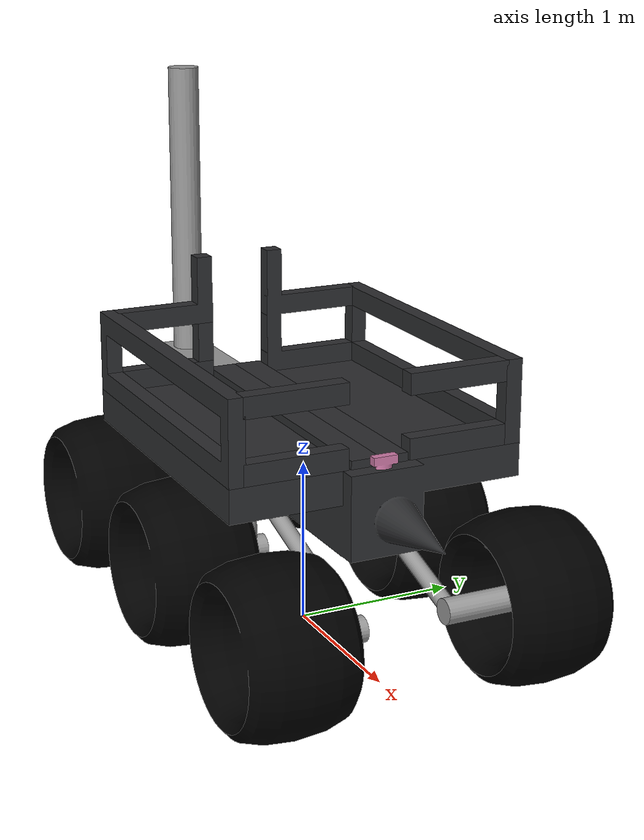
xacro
<?xml version="1.0"?>
<!-- created with Phobos 1.0.1 "Capricious Choutengan" -->
<robot name="danieljr_armed" xmlns:xacro="http://www.ros.org/wiki/xacro">

    <xacro:include filename="$(find danieljr_armed_description)/urdf/utils/utils.urdf.xacro"/>
    <xacro:include filename="$(find danieljr_armed_description)/urdf/base/robot_base.urdf.xacro"/>
    <xacro:include filename="$(find danieljr_armed_description)/urdf/sensors/camera.urdf.xacro"/>
    <xacro:include filename="$(find danieljr_armed_description)/urdf/sensors/imu_sensor.urdf.xacro"/>
    <xacro:include filename="$(find danieljr_armed_description)/urdf/sensors/lidar_3d_sensor.urdf.xacro"/>
    <xacro:include filename="$(find danieljr_armed_description)/urdf/wheels/rover_wheel.urdf.xacro"/>
    <xacro:include filename="$(find danieljr_armed_description)/urdf/arm/scara.urdf.xacro"/>
    <xacro:include filename="$(find danieljr_armed_description)/urdf/arm/gripper.urdf.xacro"/>

    <xacro:arg name="prefix" default=""/>

    <xacro:utils/>
    <xacro:chasis_structure prefix="$(arg prefix)" max_s="0.06500" max_e="1.23000" close_g="0.18000"/>
    <xacro:imu_sensor_structure prefix="$(arg prefix)" conex_link="chasis_link"/>
    <xacro:lidar_3d_structure prefix="$(arg prefix)" conex_link="chasis_link"/>
    <xacro:rover_wheel_structure prefix="$(arg prefix)" conex1_link="arm_wheel_left_link" conex2_link="arm_wheel_right_link"/>
    <xacro:scara_structure prefix="$(arg prefix)" conex_link="aa_elevator_link" lp="-0.20000" up="1.80000"/>
    <xacro:gripper_structure prefix="$(arg prefix)" arm_link="arm_2_tcp_link" mc="0.06000" lr="-3.14160" ur="3.14000"/>
    <xacro:camera_structure prefix="$(arg prefix)" conex1_link="chasis_link" conex2_link="arm_2_tcp_link" h_fov="1.047" v_width="1920" v_height="1080"/>

    <!-- GAZEBO ROS -->
    <xacro:include filename="$(find danieljr_armed_description)/urdf/ros2_control.urdf.xacro"/>
    <xacro:arg name="config_controllers" default="$(find danieljr_armed_description)/config/danieljr_armed_controllers.yaml"/>
    <xacro:arg name="update_rate" default="20"/>
    <xacro:ros2_control prefix="$(arg prefix)"/>
</robot>

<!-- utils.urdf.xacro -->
<robot name="danieljr_armed" xmlns:xacro="http://www.ros.org/wiki/xacro">
<xacro:macro name="utils" params="">
  <material name="Material">
    <color rgba="0.00000 0.00000 0.00000 1.00000"/>
  </material>
  <material name="Material.001">
    <color rgba="0.00000 0.00000 0.00000 1.00000"/>
  </material>
  <material name="Material.002">
    <color rgba="0.00000 0.00000 0.00000 1.00000"/>
  </material>
  <material name="Material.003">
    <color rgba="0.00000 0.00000 0.00000 1.00000"/>
  </material>
  <material name="Material.004">
    <color rgba="0.00000 0.00000 0.00000 1.00000"/>
  </material>
  <material name="Material.005">
    <color rgba="0.00000 0.00000 0.00000 1.00000"/>
  </material>
  <material name="Material.006">
    <color rgba="0.60000 0.60000 0.60000 1.00000"/>
  </material>
  <material name="Material.007">
    <color rgba="0.60000 0.60000 0.60000 1.00000"/>
  </material>
  <material name="Material.008">
    <color rgba="0.60000 0.60000 0.60000 1.00000"/>
  </material>
  <material name="Material.009">
    <color rgba="0.60000 0.60000 0.60000 1.00000"/>
  </material>
  <material name="Material.010">
    <color rgba="0.60000 0.60000 0.60000 1.00000"/>
  </material>
  <material name="Material.011">
    <color rgba="0.60000 0.60000 0.60000 1.00000"/>
  </material>
  <material name="Material.012">
    <color rgba="0.60000 0.60000 0.60000 1.00000"/>
  </material>
  <material name="Material.021">
    <color rgba="0.60000 0.60000 0.60000 1.00000"/>
  </material>
  <material name="Material.022">
    <color rgba="0.60000 0.60000 0.60000 1.00000"/>
  </material>
  <material name="Material.023">
    <color rgba="0.60000 0.60000 0.60000 1.00000"/>
  </material>
  <material name="Material.024">
    <color rgba="0.60000 0.60000 0.60000 1.00000"/>
  </material>
  <material name="arm">
    <color rgba="0.60000 0.60000 0.60000 1.00000"/>
  </material>
  <material name="arm.001">
    <color rgba="0.60000 0.60000 0.60000 1.00000"/>
  </material>
  <material name="chasis">
    <color rgba="0.17255 0.17647 0.18431 1.00000"/>
  </material>
</xacro:macro>
</robot>

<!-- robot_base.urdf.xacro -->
<robot name="danieljr_armed" xmlns:xacro="http://www.ros.org/wiki/xacro">
<xacro:macro name="chasis_structure" params="prefix max_s max_e close_g">

    <xacro:include filename="$(find danieljr_armed_description)/urdf/utils/utils.urdf.xacro"/>
    <xacro:include filename="$(find danieljr_armed_description)/urdf/arm/scara.urdf.xacro"/>

    <!-- REP -->
    <link name="${prefix}base_footprint">
    </link>
    <link name="${prefix}base_link">
    </link>

    <!-- URDF -->
    <link name="${prefix}chasis_link">
        <collision name="${prefix}chasis.fence.001_collision">
        <origin rpy="0.00000 0.00000 0.00000" xyz="0.00000 0.00000 0.00033"/>
        <geometry>
            <mesh filename="package://danieljr_armed_description/meshes/dae/Cube.135.dae" scale="1.00000 0.08750 0.02500"/>
        </geometry>
        </collision>
        <collision name="${prefix}chasis.fence.002_collision">
        <origin rpy="0.00000 0.00000 0.00000" xyz="-0.98285 -0.01123 0.31767"/>
        <geometry>
            <box size="0.10000 1.62000 0.50000"/>
        </geometry>
        </collision>
        <collision name="${prefix}chasis.fence.003_collision">
        <origin rpy="0.00000 0.00000 0.00000" xyz="0.00000 0.00000 0.00033"/>
        <geometry>
            <mesh filename="package://danieljr_armed_description/meshes/dae/Cube.137.dae" scale="1.00000 0.08750 0.02500"/>
        </geometry>
        </collision>
        <collision name="${prefix}chasis.fence.004_collision">
        <origin rpy="0.00000 0.00000 0.00000" xyz="0.00000 0.00000 0.00033"/>
        <geometry>
            <mesh filename="package://danieljr_armed_description/meshes/dae/Cube.138.dae" scale="1.00000 0.08750 0.02500"/>
        </geometry>
        </collision>
        <collision name="${prefix}chasis_collision">
        <origin rpy="0.00000 0.00000 0.00000" xyz="0.26715 -0.00000 0.00076"/>
        <geometry>
            <box size="2.80000 1.80000 0.17555"/>
        </geometry>
        </collision>
        <inertial>
        <inertia ixx="148.76589" ixy="-0.68567" ixz="103.55062" iyy="704.36524" iyz="0.13769" izz="772.33136"/>
        <origin rpy="0.00000 0.00000 0.00000" xyz="0.09918 -0.00001 0.08906"/>
        <mass value="400.00000"/>
        </inertial>
        <visual name="${prefix}chasis">
        <origin rpy="0.00000 0.00000 0.00000" xyz="0.00000 0.00000 0.00033"/>
        <material name="chasis"/>
        <geometry>
            <mesh filename="package://danieljr_armed_description/meshes/dae/Cube.001.dae" scale="1.00000 0.08750 0.02500"/>
        </geometry>
        </visual>
        <visual name="${prefix}chasis.fence.001">
        <origin rpy="0.00000 0.00000 0.00000" xyz="0.00000 0.00000 0.00033"/>
        <material name="chasis"/>
        <geometry>
            <mesh filename="package://danieljr_armed_description/meshes/dae/Cube.135.dae" scale="1.00000 0.08750 0.02500"/>
        </geometry>
        </visual>
        <visual name="${prefix}chasis.fence.002">
        <origin rpy="0.00000 0.00000 0.00000" xyz="-0.98285 -0.01123 0.37805"/>
        <material name="chasis"/>
        <geometry>
            <mesh filename="package://danieljr_armed_description/meshes/dae/Cube.012.dae" scale="0.05000 0.05000 0.15000"/>
        </geometry>
        </visual>
        <visual name="${prefix}chasis.fence.003">
        <origin rpy="0.00000 0.00000 0.00000" xyz="0.00000 0.00000 0.00033"/>
        <material name="chasis"/>
        <geometry>
            <mesh filename="package://danieljr_armed_description/meshes/dae/Cube.137.dae" scale="1.00000 0.08750 0.02500"/>
        </geometry>
        </visual>
        <visual name="${prefix}chasis.fence.004">
        <origin rpy="0.00000 0.00000 0.00000" xyz="0.00000 0.00000 0.00033"/>
        <material name="chasis"/>
        <geometry>
            <mesh filename="package://danieljr_armed_description/meshes/dae/Cube.138.dae" scale="1.00000 0.08750 0.02500"/>
        </geometry>
        </visual>
    </link>

    <link name="${prefix}aa_elevator_link">
        <collision name="${prefix}aa_elevator_collision">
        <origin rpy="0.00000 0.00000 0.00000" xyz="-0.00000 0.00000 0.00000"/>
        <geometry>
            <mesh filename="package://danieljr_armed_description/meshes/dae/Cube.002.dae" scale="1.00000 0.08750 0.02500"/>
        </geometry>
        </collision>
        <inertial>
        <inertia ixx="0.02048" ixy="0.00000" ixz="0.00000" iyy="0.00173" iyz="0.00000" izz="0.02208"/>
        <origin rpy="0.00000 0.00000 0.00000" xyz="-0.00000 0.00000 -0.00000"/>
        <mass value="2.00000"/>
        </inertial>
        <visual name="${prefix}aa_elevator">
        <origin rpy="0.00000 0.00000 0.00000" xyz="0.00000 0.00000 -0.00000"/>
        <material name="chasis"/>
        <geometry>
            <mesh filename="package://danieljr_armed_description/meshes/dae/Cube.258.dae" scale="1.00000 0.10000 0.02500"/>
        </geometry>
        </visual>
    </link>

    <link name="${prefix}arm_wheel_left_link">
        <collision name="${prefix}arm_wheel_left_collision">
        <origin rpy="0.00000 1.26246 0.00000" xyz="0.00000 0.00000 -0.00000"/>
        <geometry>
            <mesh filename="package://danieljr_armed_description/meshes/dae/Cylinder.011.dae" scale="0.05000 0.05000 0.65000"/>
        </geometry>
        </collision>
        <inertial>
        <inertia ixx="0.08742" ixy="-0.00153" ixz="-0.00562" iyy="2.09869" iyz="-0.00217" izz="2.01952"/>
        <origin rpy="0.00000 0.00000 0.00000" xyz="-0.00000 0.00000 0.00000"/>
        <mass value="5.00000"/>
        </inertial>
        <visual name="${prefix}arm_wheel_left">
        <origin rpy="0.00000 1.26246 0.00000" xyz="0.00000 0.00000 0.00000"/>
        <material name="Material.006"/>
        <geometry>
            <mesh filename="package://danieljr_armed_description/meshes/dae/Cylinder.011.dae" scale="0.05000 0.05000 0.65000"/>
        </geometry>
        </visual>
    </link>

    <link name="${prefix}arm_wheel_right_link">
        <collision name="${prefix}arm_wheel_right_collision">
        <origin rpy="0.00000 1.26246 0.00000" xyz="0.00000 0.00000 -0.00000"/>
        <geometry>
            <mesh filename="package://danieljr_armed_description/meshes/dae/Cylinder.014.dae" scale="0.05000 0.05000 0.65000"/>
        </geometry>
        </collision>
        <inertial>
        <inertia ixx="0.08739" ixy="0.00153" ixz="-0.00562" iyy="2.09769" iyz="0.00217" izz="2.01855"/>
        <origin rpy="0.00000 0.00000 0.00000" xyz="0.00000 0.00000 -0.00000"/>
        <mass value="5.00000"/>
        </inertial>
        <visual name="${prefix}arm_wheel_right">
        <origin rpy="0.00000 1.26246 0.00000" xyz="-0.00000 0.00000 -0.00000"/>
        <material name="Material.006"/>
        <geometry>
            <mesh filename="package://danieljr_armed_description/meshes/dae/Cylinder.014.dae" scale="0.05000 0.05000 0.65000"/>
        </geometry>
        </visual>
    </link>

    <link name="${prefix}gate_1_link">
        <inertial>
        <inertia ixx="0.00552" ixy="0.00000" ixz="0.00000" iyy="0.66708" iyz="0.00000" izz="0.67177"/>
        <origin rpy="0.00000 0.00000 0.00000" xyz="0.00000 -0.00000 0.00000"/>
        <mass value="2.00000"/>
        </inertial>
        <visual name="${prefix}gate_1">
        <origin rpy="0.00000 0.00000 0.00000" xyz="0.00000 0.00000 0.00000"/>
        <material name="chasis"/>
        <geometry>
            <box size="2.00000 0.17500 0.05000"/>
        </geometry>
        </visual>
        <collision name="${prefix}gate_1_collision">
            <origin rpy="0.00000 0.00000 0.00000" xyz="0.00000 0.00000 0.00000"/>
            <geometry>
                <box size="0.001 0.001 0.001"/>
            </geometry>
        </collision>
    </link>

    <link name="${prefix}gate_2_link">
        <inertial>
        <inertia ixx="0.00552" ixy="0.00000" ixz="0.00000" iyy="0.66708" iyz="0.00000" izz="0.67177"/>
        <origin rpy="0.00000 0.00000 0.00000" xyz="0.00000 0.00000 0.00000"/>
        <mass value="2.00000"/>
        </inertial>
        <visual name="${prefix}gate_2">
        <origin rpy="0.00000 0.00000 0.00000" xyz="0.00000 0.00000 0.00000"/>
        <material name="chasis"/>
        <geometry>
            <box size="2.00000 0.17500 0.05000"/>
        </geometry>
        </visual>
        <collision name="${prefix}gate_2_collision">
            <origin rpy="0.00000 0.00000 0.00000" xyz="0.00000 0.00000 0.00000"/>
            <geometry>
                <box size="0.001 0.001 0.001"/>
            </geometry>
        </collision>
    </link>

    <joint name="${prefix}aa_elevator_link_joint" type="prismatic">
        <limit lower="0.00000" upper="${max_e}" effort="1000.00000" velocity="1.50000"/>
        <origin rpy="0.00000 0.00000 0.00000" xyz="-1.08285 0.00000 -0.37467"/>
        <parent link="${prefix}chasis_link"/>
        <child link="${prefix}aa_elevator_link"/>
        <axis xyz="0.00000 0.00000 1.00000"/>
    </joint>

    <joint name="${prefix}arm_wheel_left_link_joint" type="prismatic">
        <limit lower="-0.10000" upper="${max_s}" effort="4000.00000" velocity="1.00000"/>
        <origin rpy="0.00000 0.00000 0.00000" xyz="-0.03285 0.30599 -0.51054"/>
        <parent link="${prefix}chasis_link"/>
        <child link="${prefix}arm_wheel_left_link"/>
        <axis xyz="0.00000 0.00000 -1.00000"/>
    </joint>

    <joint name="${prefix}arm_wheel_right_link_joint" type="prismatic">
        <limit lower="-0.10000" upper="${max_s}" effort="4000.00000" velocity="1.00000"/>
        <origin rpy="0.00000 0.00000 0.00000" xyz="-0.03286 -0.30599 -0.51054"/>
        <parent link="${prefix}chasis_link"/>
        <child link="${prefix}arm_wheel_right_link"/>
        <axis xyz="0.00000 0.00000 -1.00000"/>
    </joint>

    <joint name="${prefix}gate_1_link_joint" type="prismatic">
        <limit lower="0.00000" upper="${close_g}" effort="500.00000" velocity="0.50000"/>
        <origin rpy="0.00000 0.00000 0.00000" xyz="-0.03285 -0.08750 0.09267"/>
        <parent link="${prefix}chasis_link"/>
        <child link="${prefix}gate_1_link"/>
        <axis xyz="0.00000 -1.00000 0.00000"/>
    </joint>

    <joint name="${prefix}gate_2_link_joint" type="prismatic">
        <limit lower="0.00000" upper="${close_g}" effort="500.00000" velocity="0.50000"/>
        <origin rpy="0.00000 0.00000 0.00000" xyz="-0.03285 0.08750 0.09267"/>
        <parent link="${prefix}chasis_link"/>
        <child link="${prefix}gate_2_link"/>
        <axis xyz="0.00000 1.00000 0.00000"/>
    </joint>

    <!-- REP -->

    <joint name="${prefix}base_to_footprint" type="fixed">
        <parent link="${prefix}base_footprint"/>
        <child link="${prefix}base_link"/>

        <origin xyz="0 0 1.229351" rpy="0 0 0"/>
    </joint>

    <joint name="${prefix}base_to_link" type="fixed">
        <parent link="${prefix}base_link"/>
        <child link="${prefix}chasis_link"/>

        <origin xyz="0 0 0" rpy="0 0 0"/>
    </joint>

</xacro:macro>
</robot>

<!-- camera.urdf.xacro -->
<robot name="danieljr_armed" xmlns:xacro="http://www.ros.org/wiki/xacro">
<xacro:macro name="camera_structure" params="prefix conex1_link conex2_link h_fov v_width v_height">
    <link name="${prefix}base_camera_front_link">
        <visual name="${prefix}camera">
        <origin rpy="0.00000 0.00000 0.00000" xyz="-0.00000 0.00000 -0.00000"/>
        <geometry>
            <mesh filename="package://danieljr_armed_description/meshes/dae/Cylinder.010.dae" scale="0.50000 1.00000 1.00000"/>
        </geometry>
        </visual>
        <collision name="${prefix}camera_collision">
            <origin rpy="0.000000 0.00000 0.00000" xyz="-0.00000 0.00000 -0.00000"/>
            <geometry>
                <mesh filename="package://danieljr_armed_description/meshes/dae/Cylinder.010.dae" scale="0.50000 1.00000 1.00000"/>
            </geometry>
        </collision>
    </link>

    <joint name="${prefix}base_camera_front_joint" type="fixed">
        <origin rpy="0.00000 0.00000 0.00000" xyz="1.01714 0.00000 0.09267"/>
        <parent link="${prefix}${conex1_link}"/>
        <child link="${prefix}base_camera_front_link"/>
    </joint>

    <link name="${prefix}camera_front_frame">
    </link>

    <joint name="${prefix}camera_front_frame_joint" type="fixed">
        <origin rpy="0.00000 0.00000 0.00000" xyz="0.00000 0.00000 0.00000"/>
        <parent link="${prefix}base_camera_front_link"/>
        <child link="${prefix}camera_front_frame"/>
    </joint>

    <link name="${prefix}camera_optical_front">
    </link>
    <joint name="${prefix}camera_front_link_joint" type="fixed">
        <origin rpy="-1.57000 0.00000 -1.57000" xyz="0.00000 0.00000 0.00000"/>
        <parent link="${prefix}camera_front_frame"/>
        <child link="${prefix}camera_optical_front"/>
    </joint>

    <gazebo reference="${prefix}camera_front_frame">
        <sensor name="${prefix}camera_front_sensor" type="camera">
        <visualize>true</visualize>
        <update_rate>30</update_rate>
        <topic>/${prefix}/camera_front/image</topic>
        <camera>
            <horizontal_fov>${h_fov}</horizontal_fov>
            <image>
            <width>${v_width}</width>
            <height>${v_height}</height>
            <format>R8G8B8</format>
            </image>
            <clip>
            <near>0.10</near>
            <far>15.0</far>
            </clip>
            <noise>
            <type>gaussian</type>
            <mean>0.0</mean>
            <stddev>0.007</stddev>
            </noise>
            <optical_frame_id>${prefix}camera_front_frame</optical_frame_id>
        </camera>
        </sensor>
    </gazebo>

    <link name="${prefix}base_camera_scara">
        <visual>
        <origin xyz="0 0 0.005" rpy="0 0 1.57"/>
        <geometry>
            <box size="0.1 0.05 0.05"/>
        </geometry>
        <material name="chasis"/>
        </visual>
        <collision name="${prefix}camera_scara_collision">
            <origin xyz="0 0 0.005" rpy="0 0 0"/>
            <geometry>
                <box size="0.1 0.05 0.05"/>
            </geometry>
        </collision>
    </link>

    <joint name="${prefix}base_camera_scara_joint" type="fixed">
        <origin rpy="0.00000 1.57000 0.00000" xyz="0.00000 0.00000 -0.26000"/>
        <parent link="${prefix}${conex2_link}"/>
        <child link="${prefix}base_camera_scara"/>
    </joint>

    <link name="${prefix}camera_optical_scara">
    </link>

    <joint name="${prefix}camera_scara_link_joint" type="fixed">
        <origin rpy="-1.57000 0.00000 -1.57000" xyz="0.00000 0.00000 0.00000"/>
        <parent link="${prefix}base_camera_scara"/>
        <child link="${prefix}camera_optical_scara"/>
    </joint>

    <gazebo reference="${prefix}base_camera_scara">
        <sensor name="${prefix}camera_scara_sensor" type="camera">
        <visualize>true</visualize>
        <update_rate>30</update_rate>
        <topic>/${prefix}/camera_scara/image</topic>
        <camera>
            <horizontal_fov>${h_fov}</horizontal_fov>
            <image>
            <width>${v_width}</width>
            <height>${v_height}</height>
            <format>R8G8B8</format>
            </image>
            <clip>
            <near>0.10</near>
            <far>15.0</far>
            </clip>
            <noise>
            <type>gaussian</type>
            <mean>0.0</mean>
            <stddev>0.007</stddev>
            </noise>
            <optical_frame_id>${prefix}base_camera_scara</optical_frame_id>
        </camera>
        </sensor>
    </gazebo>

</xacro:macro>
</robot>

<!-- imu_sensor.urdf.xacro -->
<robot name="danieljr_armed" xmlns:xacro="http://www.ros.org/wiki/xacro">
<xacro:macro name="imu_sensor_structure" params="prefix conex_link">
    <link name="${prefix}imu_link">
    </link>

    <joint name="${prefix}imu_link_joint" type="fixed">
        <parent link="${prefix}${conex_link}"/>
        <child link="${prefix}imu_link"/>

        <origin xyz="0 0 0" rpy="0 0 0"/>
    </joint>

  <gazebo reference="${prefix}imu_link">
    <sensor name="${prefix}imu_sensor" type="imu">
      <always_on>1</always_on>
      <update_rate>30</update_rate>
      <topic>${prefix}imu_sensor/data</topic>
    </sensor>
  </gazebo>
</xacro:macro>
</robot>

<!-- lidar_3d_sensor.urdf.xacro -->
<robot name="danieljr_armed" xmlns:xacro="http://www.ros.org/wiki/xacro">
<xacro:macro name="lidar_3d_structure" params="prefix conex_link">
    <link name="${prefix}lidar_link">
    </link>

    <joint name="${prefix}lidar_link_joint" type="fixed">
        <parent link="${prefix}${conex_link}"/>
        <child link="${prefix}lidar_link"/>

        <origin xyz="0 0 1" rpy="0 0 0"/>
    </joint>

  <gazebo reference="${prefix}lidar_link">
    <sensor name='gpu_lidar' type='gpu_lidar'>
      <pose relative_to='${prefix}lidar_link'>0 0 0 0 0 0</pose>
      <topic>/${prefix}/lidar_sensor</topic>
      <update_rate>20</update_rate>
      <gz_frame_id>${prefix}lidar_link</gz_frame_id>
      <lidar>
        <scan>
          <horizontal>
            <samples>450</samples>
            <resolution>1</resolution>
            <min_angle>-3.141592</min_angle>
            <max_angle>3.141592</max_angle>
          </horizontal>
          <vertical>
            <samples>32</samples>
            <resolution>1</resolution>
            <min_angle>-0.436332</min_angle>
            <max_angle>0.08726</max_angle>
          </vertical>
        </scan>
          <range>
          <min>0.2</min>
          <max>90.0</max>
          <resolution>0.02</resolution>
        </range>
      </lidar>
      <visualize>true</visualize>
    </sensor>
  </gazebo>
</xacro:macro>
</robot>

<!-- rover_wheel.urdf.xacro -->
<robot name="danieljr_armed" xmlns:xacro="http://www.ros.org/wiki/xacro">
<xacro:macro name="rover_wheel_structure" params="prefix conex1_link conex2_link">

    <xacro:include filename="$(find danieljr_armed_description)/urdf/utils/utils.urdf.xacro"/>

<!-- LEFT WHEELS -->
    <link name="${prefix}grap_1_link">
        <collision name="${prefix}grap_1_collision">
        <origin rpy="0.00000 0.00000 0.00000" xyz="-0.00000 0.00000 -0.00000"/>
        <geometry>
            <mesh filename="package://danieljr_armed_description/meshes/dae/Cylinder.005.dae" scale="0.07500 0.07500 0.25000"/>
        </geometry>
        </collision>
        <inertial>
        <inertia ixx="0.01112" ixy="0.00000" ixz="0.00000" iyy="0.00141" iyz="-0.00000" izz="0.01112"/>
        <origin rpy="0.00000 0.00000 0.00000" xyz="0.00000 -0.00000 0.00000"/>
        <mass value="0.50000"/>
        </inertial>
        <visual name="${prefix}grap_1">
        <origin rpy="0.00000 0.00000 0.00000" xyz="0.00000 0.00000 0.00000"/>
        <material name="Material.007"/>
        <geometry>
            <cylinder radius="0.07500" length="0.50000"/>
        </geometry>
        </visual>
    </link>

    <link name="${prefix}grap_3_link">
        <collision name="${prefix}grap_3_collision">
        <origin rpy="0.00000 0.00000 0.00000" xyz="-0.00000 0.00000 -0.00000"/>
        <geometry>
            <mesh filename="package://danieljr_armed_description/meshes/dae/Cylinder.002.dae" scale="0.07500 0.07500 0.25000"/>
        </geometry>
        </collision>
        <inertial>
        <inertia ixx="0.01112" ixy="0.00000" ixz="0.00000" iyy="0.00141" iyz="-0.00000" izz="0.01112"/>
        <origin rpy="0.00000 0.00000 0.00000" xyz="0.00000 -0.00000 0.00000"/>
        <mass value="0.50000"/>
        </inertial>
        <visual name="${prefix}grap_3">
        <origin rpy="0.00000 0.00000 0.00000" xyz="0.00000 0.00000 0.00000"/>
        <material name="Material.009"/>
        <geometry>
            <cylinder radius="0.07500" length="0.50000"/>
        </geometry>
        </visual>
    </link>

    <link name="${prefix}grap_5_link">
        <collision name="${prefix}grap_5_collision">
        <origin rpy="0.00000 0.00000 0.00000" xyz="-0.00000 0.00000 -0.00000"/>
        <geometry>
            <mesh filename="package://danieljr_armed_description/meshes/dae/Cylinder.001.dae" scale="0.07500 0.07500 0.25000"/>
        </geometry>
        </collision>
        <inertial>
        <inertia ixx="0.01112" ixy="0.00000" ixz="0.00000" iyy="0.00141" iyz="-0.00000" izz="0.01112"/>
        <origin rpy="0.00000 0.00000 0.00000" xyz="-0.00000 -0.00000 0.00000"/>
        <mass value="0.50000"/>
        </inertial>
        <visual name="${prefix}grap_5">
        <origin rpy="0.00000 0.00000 0.00000" xyz="-0.00000 0.00000 0.00000"/>
        <material name="Material.011"/>
        <geometry>
            <cylinder radius="0.07500" length="0.50000"/>
        </geometry>
        </visual>
    </link>

    <link name="${prefix}wheel_1_link">
        <collision name="${prefix}wheel_1_collision">
        <origin rpy="0.00000 0.00000 0.00000" xyz="0.00000 0.00000 0.00000"/>
        <geometry>
            <mesh filename="package://danieljr_armed_description/meshes/dae/Torus.dae" scale="0.40000 0.40000 1.30000"/>
        </geometry>
        </collision>
        <inertial>
        <inertia ixx="0.47666" ixy="0.00000" ixz="0.00000" iyy="0.70377" iyz="0.00000" izz="0.47666"/>
        <origin rpy="0.00000 0.00000 0.00000" xyz="0.00000 -0.00000 0.00000"/>
        <mass value="6.00000"/>
        </inertial>
        <visual name="${prefix}wheel_1">
        <origin rpy="0.00000 0.00000 0.00000" xyz="0.00000 0.00000 0.00000"/>
        <material name="Material"/>
        <geometry>
            <mesh filename="package://danieljr_armed_description/meshes/dae/Torus.dae" scale="0.40000 0.40000 1.30000"/>
        </geometry>
        </visual>
        <surface>
        <friction>
            <ode>
                <mu>10.000000</mu>
                <mu2>10.000000</mu2>
                <fdir1>0.000000 0.000000 1.000000</fdir1>
                <slip1>0.500000</slip1>
                <slip2>0.500000</slip2>
            </ode>
        </friction>
        </surface>
    </link>

    <link name="${prefix}wheel_3_link">
        <collision name="${prefix}wheel_3_collision">
        <origin rpy="0.00000 0.00000 0.00000" xyz="-0.00000 0.00000 0.00000"/>
        <geometry>
            <mesh filename="package://danieljr_armed_description/meshes/dae/Torus.001.dae" scale="0.40000 0.40000 1.30000"/>
        </geometry>
        </collision>
        <inertial>
        <inertia ixx="0.47666" ixy="0.00000" ixz="0.00000" iyy="0.70377" iyz="0.00000" izz="0.47666"/>
        <origin rpy="0.00000 0.00000 0.00000" xyz="0.00000 -0.00000 0.00000"/>
        <mass value="6.00000"/>
        </inertial>
        <visual name="${prefix}wheel_3">
        <origin rpy="0.00000 0.00000 0.00000" xyz="0.00000 0.00000 0.00000"/>
        <material name="Material.002"/>
        <geometry>
            <mesh filename="package://danieljr_armed_description/meshes/dae/Torus.001.dae" scale="0.40000 0.40000 1.30000"/>
        </geometry>
        </visual>
        <surface>
        <friction>
            <ode>
                <mu>10.000000</mu>
                <mu2>10.000000</mu2>
                <fdir1>0.000000 0.000000 1.000000</fdir1>
                <slip1>0.500000</slip1>
                <slip2>0.500000</slip2>
            </ode>
        </friction>
        </surface>
    </link>

    <link name="${prefix}wheel_5_link">
        <collision name="${prefix}wheel_5_collision">
        <origin rpy="0.00000 0.00000 0.00000" xyz="-0.00000 0.00000 0.00000"/>
        <geometry>
            <mesh filename="package://danieljr_armed_description/meshes/dae/Torus.002.dae" scale="0.40000 0.40000 1.30000"/>
        </geometry>
        </collision>
        <inertial>
        <inertia ixx="0.47666" ixy="0.00000" ixz="0.00000" iyy="0.70377" iyz="0.00000" izz="0.47666"/>
        <origin rpy="0.00000 0.00000 0.00000" xyz="-0.00000 -0.00000 0.00000"/>
        <mass value="6.00000"/>
        </inertial>
        <visual name="${prefix}wheel_5">
        <origin rpy="0.00000 0.00000 0.00000" xyz="-0.00000 0.00000 0.00000"/>
        <material name="Material.004"/>
        <geometry>
            <mesh filename="package://danieljr_armed_description/meshes/dae/Torus.002.dae" scale="0.40000 0.40000 1.30000"/>
        </geometry>
        </visual>
        <surface>
        <friction>
            <ode>
                <mu>10.000000</mu>
                <mu2>10.000000</mu2>
                <fdir1>0.000000 0.000000 1.000000</fdir1>
                <slip1>0.500000</slip1>
                <slip2>0.500000</slip2>
            </ode>
        </friction>
        </surface>
    </link>

    <joint name="${prefix}grap_1_link_joint" type="fixed">
        <origin rpy="1.57080 0.00000 0.00000" xyz="1.30000 0.19401 -0.22179"/>
        <parent link="${prefix}${conex1_link}"/>
        <child link="${prefix}grap_1_link"/>
    </joint>

    <joint name="${prefix}grap_3_link_joint" type="fixed">
        <origin rpy="1.57080 0.00000 0.00000" xyz="0.00000 0.19401 -0.22179"/>
        <parent link="${prefix}${conex1_link}"/>
        <child link="${prefix}grap_3_link"/>
    </joint>

    <joint name="${prefix}grap_5_link_joint" type="fixed">
        <origin rpy="1.57080 0.00000 0.00000" xyz="-1.30000 0.19401 -0.22179"/>
        <parent link="${prefix}${conex1_link}"/>
        <child link="${prefix}grap_5_link"/>
    </joint>

    <joint name="${prefix}wheel_1_link_joint" type="continuous">
        <limit lower="0" upper="0" effort="10000.00000" velocity="50.00000"/>
        <origin rpy="0.00000 0.00000 0.00000" xyz="-0.00000 -0.00000 -0.27500"/>
        <parent link="${prefix}grap_1_link"/>
        <child link="${prefix}wheel_1_link"/>
        <axis xyz="0.00000 0.00000 -1.00000"/>
    </joint>

    <joint name="${prefix}wheel_3_link_joint" type="continuous">
        <limit lower="0" upper="0" effort="10000.00000" velocity="50.00000"/>
        <origin rpy="0.00000 0.00000 0.00000" xyz="0.00000 -0.00000 -0.27500"/>
        <parent link="${prefix}grap_3_link"/>
        <child link="${prefix}wheel_3_link"/>
        <axis xyz="0.00000 0.00000 -1.00000"/>
    </joint>

    <joint name="${prefix}wheel_5_link_joint" type="continuous">
        <limit lower="0" upper="0" effort="10000.00000" velocity="50.00000"/>
        <origin rpy="0.00000 0.00000 0.00000" xyz="0.00000 -0.00000 -0.27500"/>
        <parent link="${prefix}grap_5_link"/>
        <child link="${prefix}wheel_5_link"/>
        <axis xyz="0.00000 0.00000 -1.00000"/>
    </joint>

<!-- RIGHT WHEELS -->

    <link name="${prefix}grap_2_link">
        <collision name="${prefix}grap_2_collision">
        <origin rpy="0.00000 0.00000 0.00000" xyz="0.00000 0.00000 -0.00000"/>
        <geometry>
            <mesh filename="package://danieljr_armed_description/meshes/dae/Cylinder.004.dae" scale="0.07500 0.07500 0.25000"/>
        </geometry>
        </collision>
        <inertial>
        <inertia ixx="0.01112" ixy="0.00000" ixz="0.00000" iyy="0.00141" iyz="-0.00000" izz="0.01112"/>
        <origin rpy="0.00000 0.00000 0.00000" xyz="0.00000 0.00000 0.00000"/>
        <mass value="0.50000"/>
        </inertial>
        <visual name="${prefix}grap_2">
        <origin rpy="0.00000 0.00000 0.00000" xyz="0.00000 0.00000 0.00000"/>
        <material name="Material.008"/>
        <geometry>
            <cylinder radius="0.07500" length="0.50000"/>
        </geometry>
        </visual>
    </link>

    <link name="${prefix}grap_4_link">
        <collision name="${prefix}grap_4_collision">
        <origin rpy="0.00000 0.00000 0.00000" xyz="-0.00000 0.00000 -0.00000"/>
        <geometry>
            <mesh filename="package://danieljr_armed_description/meshes/dae/Cylinder.003.dae" scale="0.07500 0.07500 0.25000"/>
        </geometry>
        </collision>
        <inertial>
        <inertia ixx="0.01112" ixy="0.00000" ixz="0.00000" iyy="0.00141" iyz="-0.00000" izz="0.01112"/>
        <origin rpy="0.00000 0.00000 0.00000" xyz="0.00000 0.00000 0.00000"/>
        <mass value="0.50000"/>
        </inertial>
        <visual name="${prefix}grap_4">
        <origin rpy="0.00000 0.00000 0.00000" xyz="0.00000 0.00000 0.00000"/>
        <material name="Material.010"/>
        <geometry>
            <cylinder radius="0.07500" length="0.50000"/>
        </geometry>
        </visual>
    </link>

    <link name="${prefix}grap_6_link">
        <collision name="${prefix}grap_6_collision">
        <origin rpy="0.00000 0.00000 0.00000" xyz="-0.00000 0.00000 -0.00000"/>
        <geometry>
            <mesh filename="package://danieljr_armed_description/meshes/dae/Cylinder.dae" scale="0.07500 0.07500 0.25000"/>
        </geometry>
        </collision>
        <inertial>
        <inertia ixx="0.01112" ixy="0.00000" ixz="0.00000" iyy="0.00141" iyz="-0.00000" izz="0.01112"/>
        <origin rpy="0.00000 0.00000 0.00000" xyz="-0.00000 0.00000 0.00000"/>
        <mass value="0.50000"/>
        </inertial>
        <visual name="${prefix}grap_6">
        <origin rpy="0.00000 0.00000 0.00000" xyz="-0.00000 0.00000 0.00000"/>
        <material name="Material.012"/>
        <geometry>
            <cylinder radius="0.07500" length="0.50000"/>
        </geometry>
        </visual>
    </link>

    <link name="${prefix}wheel_2_link">
        <collision name="${prefix}wheel_2_collision">
        <origin rpy="0.00000 0.00000 0.00000" xyz="0.00000 0.00000 -0.00000"/>
        <geometry>
            <mesh filename="package://danieljr_armed_description/meshes/dae/Torus.005.dae" scale="0.40000 0.40000 1.30000"/>
        </geometry>
        </collision>
        <inertial>
        <inertia ixx="0.47666" ixy="0.00000" ixz="0.00000" iyy="0.70377" iyz="0.00000" izz="0.47666"/>
        <origin rpy="0.00000 0.00000 0.00000" xyz="0.00000 -0.00000 -0.00000"/>
        <mass value="6.00000"/>
        </inertial>
        <visual name="${prefix}wheel_2">
        <origin rpy="0.00000 0.00000 0.00000" xyz="0.00000 -0.00000 -0.00000"/>
        <material name="Material.001"/>
        <geometry>
            <mesh filename="package://danieljr_armed_description/meshes/dae/Torus.005.dae" scale="0.40000 0.40000 1.30000"/>
        </geometry>
        </visual>
        <surface>
        <friction>
            <ode>
                <mu>10.000000</mu>
                <mu2>10.000000</mu2>
                <fdir1>0.000000 0.000000 1.000000</fdir1>
                <slip1>0.500000</slip1>
                <slip2>0.500000</slip2>
            </ode>
        </friction>
        </surface>
    </link>

    <link name="${prefix}wheel_4_link">
        <collision name="${prefix}wheel_4_collision">
        <origin rpy="0.00000 0.00000 0.00000" xyz="-0.00000 0.00000 -0.00000"/>
        <geometry>
            <mesh filename="package://danieljr_armed_description/meshes/dae/Torus.004.dae" scale="0.40000 0.40000 1.30000"/>
        </geometry>
        </collision>
        <inertial>
        <inertia ixx="0.47666" ixy="0.00000" ixz="0.00000" iyy="0.70377" iyz="0.00000" izz="0.47666"/>
        <origin rpy="0.00000 0.00000 0.00000" xyz="0.00000 -0.00000 -0.00000"/>
        <mass value="6.00000"/>
        </inertial>
        <visual name="${prefix}wheel_4">
        <origin rpy="0.00000 0.00000 0.00000" xyz="0.00000 -0.00000 -0.00000"/>
        <material name="Material.003"/>
        <geometry>
            <mesh filename="package://danieljr_armed_description/meshes/dae/Torus.004.dae" scale="0.40000 0.40000 1.30000"/>
        </geometry>
        </visual>
        <surface>
        <friction>
            <ode>
                <mu>10.000000</mu>
                <mu2>10.000000</mu2>
                <fdir1>0.000000 0.000000 1.000000</fdir1>
                <slip1>0.500000</slip1>
                <slip2>0.500000</slip2>
            </ode>
        </friction>
        </surface>
    </link>

    <link name="${prefix}wheel_6_link">
        <collision name="${prefix}wheel_6_collision">
        <origin rpy="0.00000 0.00000 0.00000" xyz="-0.00000 0.00000 -0.00000"/>
        <geometry>
            <mesh filename="package://danieljr_armed_description/meshes/dae/Torus.003.dae" scale="0.40000 0.40000 1.30000"/>
        </geometry>
        </collision>
        <inertial>
        <inertia ixx="0.47666" ixy="0.00000" ixz="0.00000" iyy="0.70377" iyz="0.00000" izz="0.47666"/>
        <origin rpy="0.00000 0.00000 0.00000" xyz="-0.00000 -0.00000 -0.00000"/>
        <mass value="6.00000"/>
        </inertial>
        <visual name="${prefix}wheel_6">
        <origin rpy="0.00000 0.00000 0.00000" xyz="-0.00000 -0.00000 -0.00000"/>
        <material name="Material.005"/>
        <geometry>
            <mesh filename="package://danieljr_armed_description/meshes/dae/Torus.003.dae" scale="0.40000 0.40000 1.30000"/>
        </geometry>
        </visual>
        <surface>
        <friction>
            <ode>
                <mu>10.000000</mu>
                <mu2>10.000000</mu2>
                <fdir1>0.000000 0.000000 1.000000</fdir1>
                <slip1>0.500000</slip1>
                <slip2>0.500000</slip2>
            </ode>
        </friction>
        </surface>
    </link>

    <joint name="${prefix}grap_2_link_joint" type="fixed">
        <origin rpy="1.57080 0.00000 0.00000" xyz="1.30000 -0.19401 -0.22179"/>
        <parent link="${prefix}${conex2_link}"/>
        <child link="${prefix}grap_2_link"/>
    </joint>

    <joint name="${prefix}grap_4_link_joint" type="fixed">
        <origin rpy="1.57080 0.00000 0.00000" xyz="0.00000 -0.19401 -0.22179"/>
        <parent link="${prefix}${conex2_link}"/>
        <child link="${prefix}grap_4_link"/>
    </joint>

    <joint name="${prefix}grap_6_link_joint" type="fixed">
        <origin rpy="1.57080 0.00000 0.00000" xyz="-1.30000 -0.19401 -0.22179"/>
        <parent link="${prefix}${conex2_link}"/>
        <child link="${prefix}grap_6_link"/>
    </joint>

    <joint name="${prefix}wheel_2_link_joint" type="continuous">
        <limit lower="0" upper="0" effort="10000.00000" velocity="50.00000"/>
        <origin rpy="3.14000 0.00000 0.00000" xyz="0.00000 0.00000 0.27500"/>
        <parent link="${prefix}grap_2_link"/>
        <child link="${prefix}wheel_2_link"/>
        <axis xyz="0.00000 0.00000 -1.00000"/>
    </joint>

    <joint name="${prefix}wheel_4_link_joint" type="continuous">
        <limit lower="0" upper="0" effort="10000.00000" velocity="50.00000"/>
        <origin rpy="3.14000 0.00000 0.00000" xyz="0.00000 0.00000 0.27500"/>
        <parent link="${prefix}grap_4_link"/>
        <child link="${prefix}wheel_4_link"/>
        <axis xyz="0.00000 0.00000 -1.00000"/>
    </joint>

    <joint name="${prefix}wheel_6_link_joint" type="continuous">
        <limit lower="0" upper="0" effort="10000.00000" velocity="50.00000"/>
        <origin rpy="3.14000 0.00000 0.00000" xyz="0.00000 0.00000 0.27500"/>
        <parent link="${prefix}grap_6_link"/>
        <child link="${prefix}wheel_6_link"/>
        <axis xyz="0.00000 0.00000 -1.00000"/>
    </joint>

    <transmission name="${prefix}wheel_1_link_joint_trans">
    <type>transmission_interface/SimpleTransmission</type>
    <joint name="${prefix}wheel_1_link_joint">
        <hardwareInterface>hardware_interface/VelocityJointInterface</hardwareInterface>
    </joint>
        <actuator name="${prefix}wheel_1_link_joint_motor">
            <mechanicalReduction>1</mechanicalReduction>
        </actuator>
    </transmission>

    <gazebo reference="${prefix}wheel_1_link">
        <mu1>5</mu1>
        <mu2>5</mu2>
    </gazebo>

    <transmission name="${prefix}wheel_2_link_joint_trans">
    <type>transmission_interface/SimpleTransmission</type>
    <joint name="${prefix}wheel_2_link_joint">
        <hardwareInterface>hardware_interface/VelocityJointInterface</hardwareInterface>
    </joint>
        <actuator name="${prefix}wheel_2_link_joint_motor">
            <mechanicalReduction>1</mechanicalReduction>
        </actuator>
    </transmission>

    <gazebo reference="${prefix}wheel_2_link">
        <mu1>5</mu1>
        <mu2>5</mu2>
    </gazebo>

    <transmission name="${prefix}wheel_3_link_joint_trans">
    <type>transmission_interface/SimpleTransmission</type>
    <joint name="${prefix}wheel_3_link_joint">
        <hardwareInterface>hardware_interface/VelocityJointInterface</hardwareInterface>
    </joint>
        <actuator name="${prefix}wheel_3_link_joint_motor">
            <mechanicalReduction>1</mechanicalReduction>
        </actuator>
    </transmission>

    <gazebo reference="${prefix}wheel_3_link">
        <mu1>5</mu1>
        <mu2>5</mu2>
    </gazebo>

    <transmission name="${prefix}wheel_4_link_joint_trans">
    <type>transmission_interface/SimpleTransmission</type>
    <joint name="${prefix}wheel_4_link_joint">
        <hardwareInterface>hardware_interface/VelocityJointInterface</hardwareInterface>
    </joint>
        <actuator name="${prefix}wheel_4_link_joint_motor">
            <mechanicalReduction>1</mechanicalReduction>
        </actuator>
    </transmission>

    <gazebo reference="${prefix}wheel_4_link">
        <mu1>5</mu1>
        <mu2>5</mu2>
    </gazebo>

    <transmission name="${prefix}wheel_5_link_joint_trans">
    <type>transmission_interface/SimpleTransmission</type>
    <joint name="${prefix}wheel_5_link_joint">
        <hardwareInterface>hardware_interface/VelocityJointInterface</hardwareInterface>
    </joint>
        <actuator name="${prefix}wheel_5_link_joint_motor">
            <mechanicalReduction>1</mechanicalReduction>
        </actuator>
    </transmission>

    <gazebo reference="${prefix}wheel_5_link">
        <mu1>5</mu1>
        <mu2>5</mu2>
    </gazebo>

    <transmission name="${prefix}wheel_6_link_joint_trans">
    <type>transmission_interface/SimpleTransmission</type>
    <joint name="${prefix}wheel_6_link_joint">
        <hardwareInterface>hardware_interface/VelocityJointInterface</hardwareInterface>
    </joint>
        <actuator name="${prefix}wheel_6_link_joint_motor">
            <mechanicalReduction>1</mechanicalReduction>
        </actuator>
    </transmission>

    <gazebo reference="${prefix}wheel_6_link">
        <mu1>5</mu1>
        <mu2>5</mu2>
    </gazebo>
</xacro:macro>
</robot>

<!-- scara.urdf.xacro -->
<robot name="danieljr_armed" xmlns:xacro="http://www.ros.org/wiki/xacro">
<xacro:macro name="scara_structure" params="prefix conex_link lp up">

    <xacro:include filename="$(find danieljr_armed_description)/urdf/utils/utils.urdf.xacro"/>
    <xacro:include filename="$(find danieljr_armed_description)/urdf/arm/gripper.urdf.xacro"/>

    <link name="${prefix}arm_base_link">
        <collision name="${prefix}arm_base_collision">
        <origin rpy="0.00000 0.00000 0.00000" xyz="0.00000 0.00000 0.00000"/>
        <geometry>
            <box size="0.30000 0.30000 0.20000"/>
        </geometry>
        </collision>
        <inertial>
        <inertia ixx="0.41667" ixy="0.00000" ixz="0.00000" iyy="0.41667" iyz="0.00000" izz="0.30000"/>
        <origin rpy="0.00000 0.00000 0.00000" xyz="0.00000 0.00000 0.00000"/>
        <mass value="20.00000"/>
        </inertial>
        <visual name="${prefix}arm_base">
        <origin rpy="0.00000 0.00000 0.00000" xyz="0.00000 0.00000 0.00000"/>
        <material name="Material.023"/>
        <geometry>
            <box size="0.30000 0.30000 0.20000"/>
        </geometry>
        </visual>
    </link>

    <link name="${prefix}arm_1_link">
        <collision name="${prefix}arm_1_collision">
        <origin rpy="0.00000 0.00000 0.00000" xyz="0.27750 0.00000 0.00000"/>
        <geometry>
            <mesh filename="package://danieljr_armed_description/meshes/dae/Cube.007.dae" scale="0.42500 0.15000 0.05000"/>
        </geometry>
        </collision>
        <inertial>
        <inertia ixx="0.08493" ixy="0.00000" ixz="-0.00000" iyy="1.50283" iyz="0.00000" izz="1.57109"/>
        <origin rpy="0.00000 0.00000 0.00000" xyz="0.26411 0.00000 0.00000"/>
        <mass value="10.00000"/>
        </inertial>
        <visual name="${prefix}arm_1">
        <origin rpy="0.00000 0.00000 0.00000" xyz="0.27750 0.00000 0.00000"/>
        <material name="arm.001"/>
        <geometry>
            <mesh filename="package://danieljr_armed_description/meshes/dae/Cube.005.dae" scale="0.42500 0.15000 0.05000"/>
        </geometry>
        </visual>
    </link>

    <link name="${prefix}arm_1_2_link">
        <collision name="${prefix}arm_1_2_collision">
        <origin rpy="0.00000 0.00000 0.00000" xyz="0.00000 0.00000 0.05000"/>
        <geometry>
            <cylinder radius="0.15000" length="0.20000"/>
        </geometry>
        </collision>
        <inertial>
        <inertia ixx="0.01792" ixy="0.00000" ixz="0.00000" iyy="0.01792" iyz="0.00000" izz="0.02250"/>
        <origin rpy="0.00000 0.00000 0.00000" xyz="0.00000 0.00000 0.05000"/>
        <mass value="2.00000"/>
        </inertial>
        <visual name="${prefix}arm_1_2">
        <origin rpy="0.00000 0.00000 0.00000" xyz="0.00000 0.00000 0.05000"/>
        <material name="arm"/>
        <geometry>
            <cylinder radius="0.15000" length="0.20000"/>
        </geometry>
        </visual>
    </link>

    <link name="${prefix}arm_2_link">
        <collision name="${prefix}arm_2_collision">
        <origin rpy="0.00000 0.00000 0.00000" xyz="0.82865 -0.00000 0.00000"/>
        <geometry>
            <mesh filename="package://danieljr_armed_description/meshes/dae/Cube.003.dae" scale="0.50000 0.15000 0.05000"/>
        </geometry>
        </collision>
        <inertial>
        <inertia ixx="0.00804" ixy="0.00000" ixz="0.00000" iyy="0.07559" iyz="0.00000" izz="0.08209"/>
        <origin rpy="0.00000 0.00000 0.00000" xyz="0.54541 0.00000 0.00000"/>
        <mass value="1.00000"/>
        </inertial>
        <visual name="${prefix}arm_2">
        <origin rpy="0.00000 0.00000 0.00000" xyz="0.82865 -0.00000 0.00000"/>
        <material name="Material.021"/>
        <geometry>
            <mesh filename="package://danieljr_armed_description/meshes/dae/Cube.003.dae" scale="0.50000 0.15000 0.05000"/>
        </geometry>
        </visual>
    </link>

    <link name="${prefix}arm_2_tcp_link">
        <collision name="${prefix}arm_2_tcp_collision">
        <origin rpy="0.00000 0.00000 0.00000" xyz="-0.00000 0.00000 0.85000"/>
        <geometry>
            <cylinder radius="0.10000" length="2.20000"/>
        </geometry>
        </collision>
        <inertial>
        <inertia ixx="0.20292" ixy="0.00000" ixz="0.00000" iyy="0.20292" iyz="0.00000" izz="0.00250"/>
        <origin rpy="0.00000 0.00000 0.00000" xyz="0.00000 0.00000 0.85000"/>
        <mass value="0.50000"/>
        </inertial>
        <visual name="${prefix}arm_2_tcp">
        <origin rpy="0.00000 0.00000 0.00000" xyz="-0.00000 0.00000 0.85000"/>
        <material name="Material.022"/>
        <geometry>
            <cylinder radius="0.10000" length="2.20000"/>
        </geometry>
        </visual>
    </link>

    <joint name="${prefix}arm_base_link_joint" type="fixed">
        <origin rpy="0.00000 0.00000 0.00000" xyz="-0.15000 0.00000 0.11233"/>
        <parent link="${prefix}${conex_link}"/>
        <child link="${prefix}arm_base_link"/>
    </joint>

    <joint name="${prefix}arm_1_link_joint" type="revolute">
        <limit lower="-3.14160" upper="3.14160" effort="1000.00000" velocity="10.00000"/>
        <origin rpy="0.00000 0.00000 0.00000" xyz="0.00000 0.00000 0.15000"/>
        <parent link="${prefix}arm_base_link"/>
        <child link="${prefix}arm_1_link"/>
        <axis xyz="0.00000 0.00000 1.00000"/>
    </joint>

    <joint name="${prefix}arm_1_2_link_joint" type="fixed">
        <origin rpy="0.00000 0.00000 0.00000" xyz="0.80000 0.00000 0.00000"/>
        <parent link="${prefix}arm_1_link"/>
        <child link="${prefix}arm_1_2_link"/>
    </joint>

    <joint name="${prefix}arm_2_link_joint" type="revolute">
        <limit lower="-3.14000" upper="3.14000" effort="1000.00000" velocity="10.00000"/>
        <origin rpy="0.00000 0.00000 -3.14159" xyz="0.00000 0.00000 0.10000"/>
        <parent link="${prefix}arm_1_2_link"/>
        <child link="${prefix}arm_2_link"/>
        <axis xyz="0.00000 0.00000 1.00000"/>
    </joint>

    <joint name="${prefix}arm_2_tcp_link_joint" type="prismatic">
        <limit lower="${lp}" upper="${up}" effort="1000.00000" velocity="10.00000"/>
        <origin rpy="0.00000 0.00000 0.00000" xyz="1.40000 0.00000 0.00000"/>
        <parent link="${prefix}arm_2_link"/>
        <child link="${prefix}arm_2_tcp_link"/>
        <axis xyz="0.00000 0.00000 -1.00000"/>
    </joint>

</xacro:macro>
</robot>

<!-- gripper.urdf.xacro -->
<robot name="danieljr_armed" xmlns:xacro="http://www.ros.org/wiki/xacro">
<xacro:macro name="gripper_structure" params="prefix arm_link mc lr ur">

    <xacro:include filename="$(find danieljr_armed_description)/urdf/utils/utils.urdf.xacro"/>

    <link name="${prefix}gripper_base_link">
        <collision name="${prefix}gripper_base_collision">
        <origin rpy="0.00000 0.00000 0.00000" xyz="-0.00000 0.00000 0.00000"/>
        <geometry>
            <box size="0.15000 0.60000 0.02000"/>
        </geometry>
        </collision>
        <inertial>
        <inertia ixx="0.01502" ixy="0.00000" ixz="0.00000" iyy="0.00095" iyz="0.00000" izz="0.01594"/>
        <origin rpy="0.00000 0.00000 0.00000" xyz="0.00000 0.00000 0.00000"/>
        <mass value="0.50000"/>
        </inertial>
        <visual name="${prefix}gripper_base">
        <origin rpy="0.00000 0.00000 0.00000" xyz="-0.00000 0.00000 0.00000"/>
        <material name="Material.024"/>
        <geometry>
            <box size="0.15000 0.60000 0.02000"/>
        </geometry>
        </visual>
    </link>

    <link name="${prefix}gripper_left_link">
        <collision name="${prefix}gripper_left_collision">
        <origin rpy="-1.57080 -0.00000 0.00000" xyz="-0.00000 0.00000 -0.00000"/>
        <geometry>
            <box size="0.30000 0.02000 0.18000"/>
        </geometry>
        </collision>
        <inertial>
        <inertia ixx="0.00137" ixy="0.00000" ixz="0.00000" iyy="0.00229" iyz="0.00000" izz="0.00095"/>
        <origin rpy="0.00000 0.00000 0.00000" xyz="0.00000 0.00000 0.00000"/>
        <mass value="0.50000"/>
        </inertial>
        <visual name="${prefix}gripper_left">
        <origin rpy="-1.57080 -0.00000 0.00000" xyz="-0.00000 0.00000 -0.00000"/>
        <material name="Material.006"/>
        <geometry>
            <box size="0.30000 0.02000 0.18000"/>
        </geometry>
        </visual>
    </link>

    <link name="${prefix}gripper_right_link">
        <collision name="${prefix}gripper_right_collision">
        <origin rpy="1.57080 0.00000 0.00000" xyz="-0.00000 0.00000 0.00000"/>
        <geometry>
            <box size="0.30000 0.02000 0.18000"/>
        </geometry>
        </collision>
        <inertial>
        <inertia ixx="0.00137" ixy="0.00000" ixz="-0.00000" iyy="0.00229" iyz="0.00000" izz="0.00095"/>
        <origin rpy="0.00000 0.00000 0.00000" xyz="0.00000 -0.00000 0.00000"/>
        <mass value="0.50000"/>
        </inertial>
        <visual name="${prefix}gripper_right">
        <origin rpy="1.57080 0.00000 0.00000" xyz="-0.00000 0.00000 0.00000"/>
        <material name="Material.007"/>
        <geometry>
            <box size="0.30000 0.02000 0.18000"/>
        </geometry>
        </visual>
    </link>

    <joint name="${prefix}gripper_base_link_joint" type="revolute">
        <limit lower="${lr}" upper="${ur}" effort="3000.00000" velocity="10.00000"/>
        <origin rpy="0.00000 0.00000 0.00000" xyz="-0.00000 0.00000 -0.26000"/>
        <parent link="${prefix}${arm_link}"/>
        <child link="${prefix}gripper_base_link"/>
        <axis xyz="0.00000 0.00000 1.00000"/>
    </joint>

    <joint name="${prefix}gripper_left_link_joint" type="prismatic">
        <limit lower="0.00000" upper="${mc}" effort="3000.00000" velocity="0.50000"/>
        <origin rpy="1.57080 0.00000 0.00000" xyz="0.00000 0.29000 -0.10000"/>
        <parent link="${prefix}gripper_base_link"/>
        <child link="${prefix}gripper_left_link"/>
        <axis xyz="0.00000 0.00000 1.00000"/>
    </joint>

    <joint name="${prefix}gripper_right_link_joint" type="prismatic">
        <limit lower="0.00000" upper="${mc}" effort="3000.00000" velocity="0.50000"/>
        <origin rpy="-1.57080 -0.00000 0.00000" xyz="-0.00000 -0.29000 -0.10000"/>
        <parent link="${prefix}gripper_base_link"/>
        <child link="${prefix}gripper_right_link"/>
        <axis xyz="0.00000 0.00000 1.00000"/>
    </joint>

</xacro:macro>
</robot>
